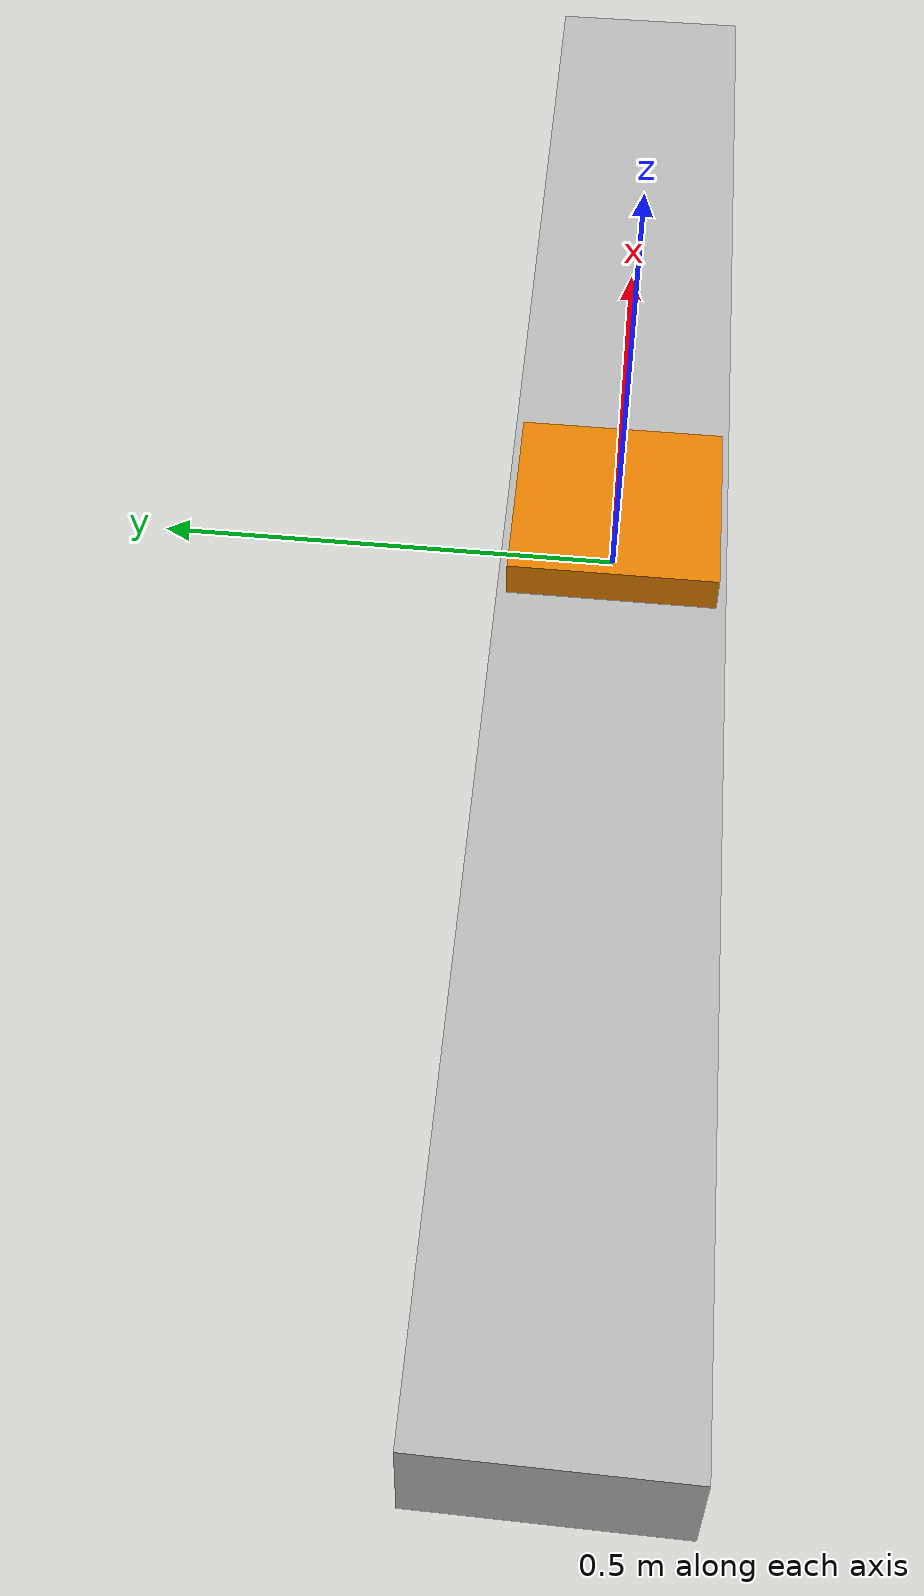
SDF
<?xml version="1.0"?>
<sdf version="1.7">
  <model name="Robot_Rail">
    <!-- This sdf file produces a model with the default parameters as
         documented in cart_pole_params_named_vector.yaml.
         They MUST be kept in sync. -->
    <link name="Mount">
      <inertial>
        <mass>10.0</mass>
        <inertia>
          <ixx>1.0e-20</ixx>
          <iyy>1.0e-20</iyy>
          <izz>1.0e-20</izz>
          <ixy>0</ixy>
          <ixz>0</ixz>
          <iyz>0</iyz>
        </inertia>
      </inertial>
      <visual name="mount_visual">
        <geometry>
          <box>
            <size>0.22 0.22 0.2</size>
          </box>
        </geometry>
        <material>
          <diffuse>0.9 0.5 0 1.0</diffuse>
        </material>
      </visual>
    </link>

    <link name="Rail">
      <inertial>
        <mass>10.0</mass>
        <inertia>
          <ixx>1.0e-20</ixx>
          <iyy>1.0e-20</iyy>
          <izz>1.0e-20</izz>
          <ixy>0</ixy>
          <ixz>0</ixz>
          <iyz>0</iyz>
        </inertia>
      </inertial>
      <visual name="rail_visual">
        <geometry>
          <box>
            <size>2.0 0.24 0.12</size>
          </box>
        </geometry>
      </visual>
    </link>

    <joint name="MountRail" type="prismatic">
      <pose>0 0 0.12 0 0 0</pose>
      <parent>Rail</parent>
      <child>Mount</child>
      <axis>
        <xyz>1.0 0.0 0.0</xyz>
	<limit>
          <!-- The pole pin joint is not actuated. -->
          <effort>100</effort>
        </limit>
      </axis>
    </joint>
  </model>
</sdf>
